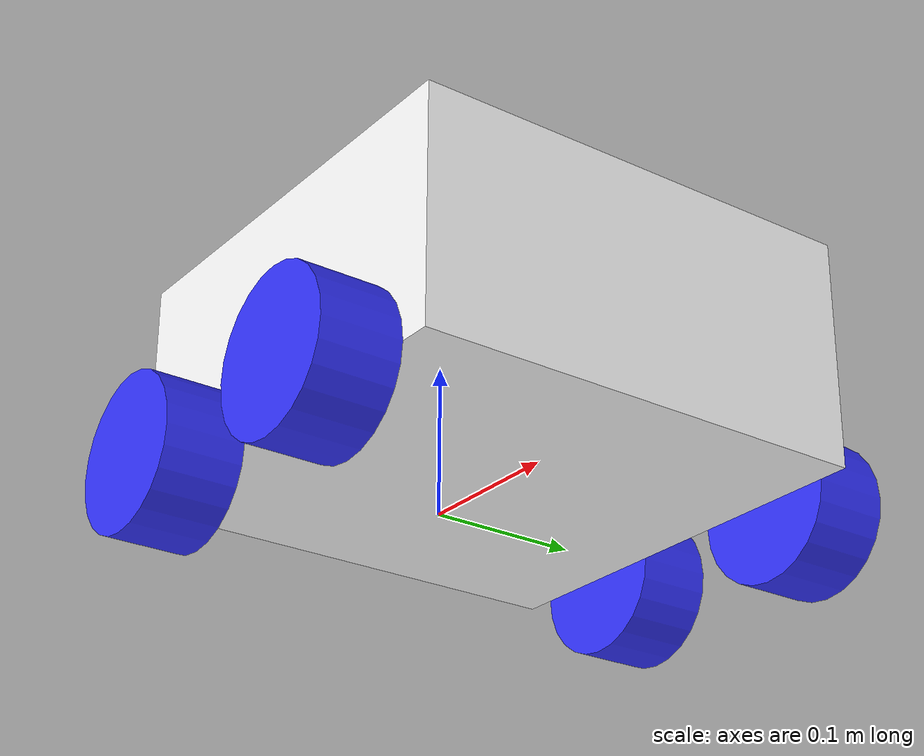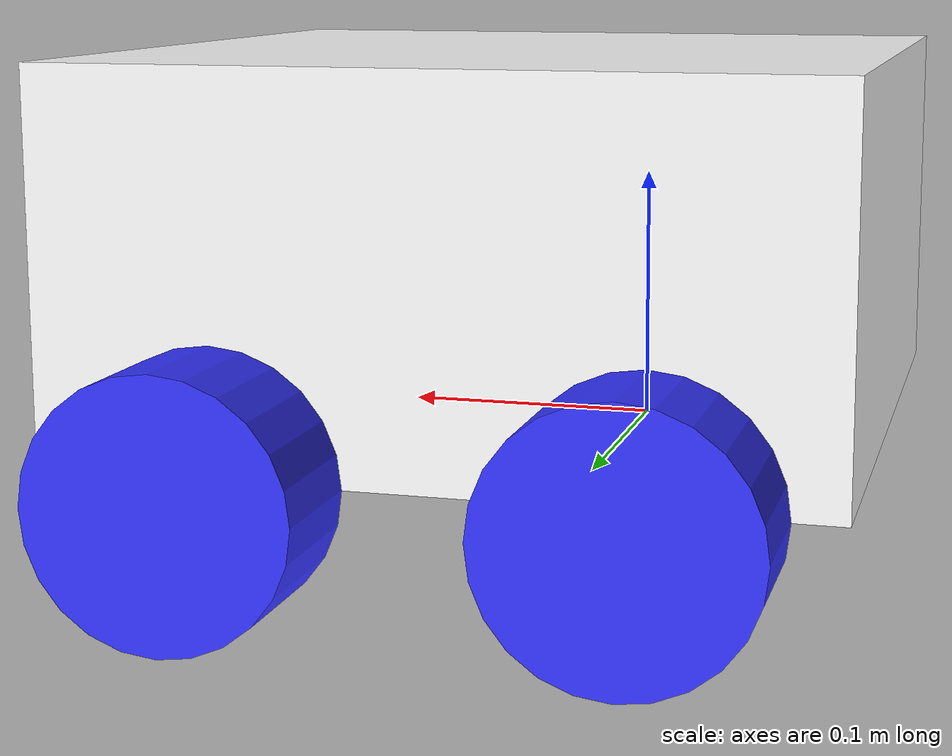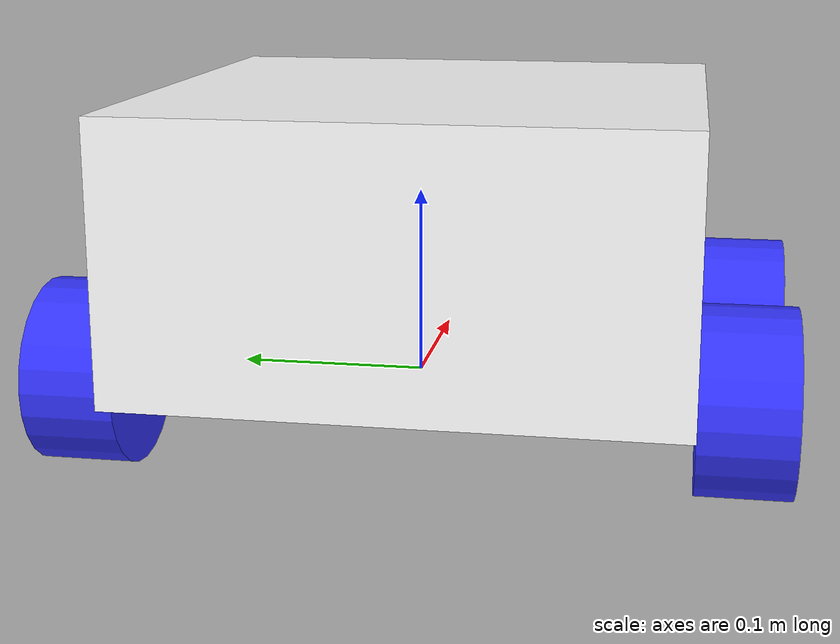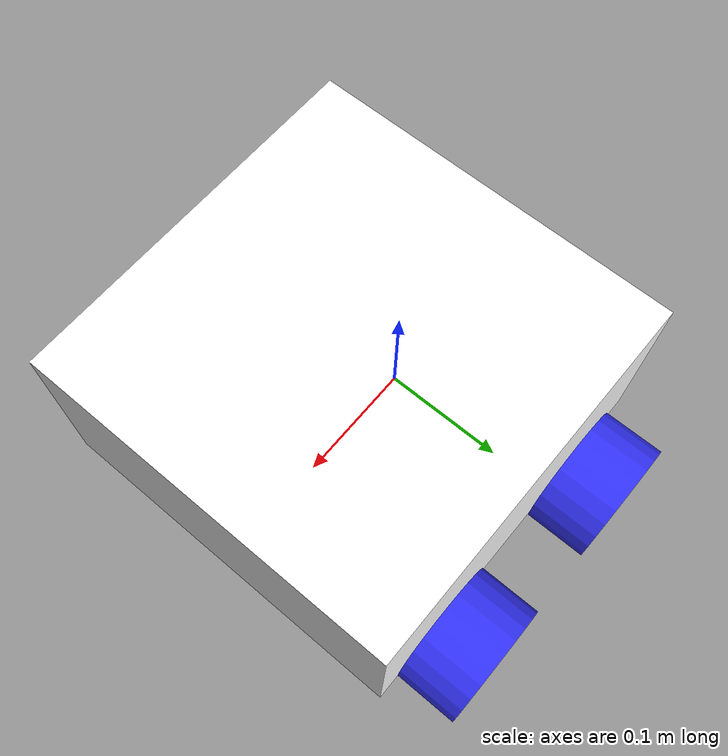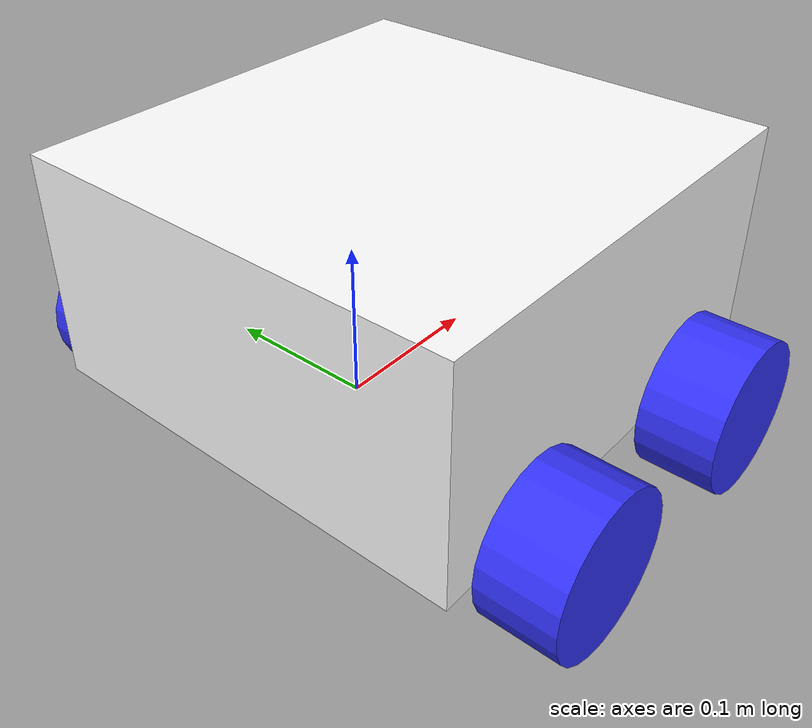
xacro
<?xml version="1.0"?>
<!-- ROBOT CORE COMPONENTS-->

<!-- !!!OUTDATED!!! -->

<!-- call xacro-->
<robot xmlns:xacro="http://www.ros.org/wiki/xacro">

    <!-- Inertial xacro-->
    <xacro:include filename="base_properties.xacro"/>

    <!-- Static Variables -->
    <xacro:property name="left_roll" value="${-pi/2}"/>
    <xacro:property name="right_roll" value="${pi/2}"/>

    <!-- Independent Variables -->
    <xacro:property name="chassis_base" value="0.3"/>
    <xacro:property name="chassis_height" value="0.15"/>
    <xacro:property name="chassis_mass" value="0.36"/>

    <xacro:property name="wheel_radius" value="0.05"/>
    <xacro:property name="wheel_length" value="0.05"/>
    <xacro:property name="wheel_mass" value="0.1"/>

    <!-- Dependent Variables-->
    <xacro:property name="chassis_joint_offset" value="${-chassis_base/3}"/>
    <xacro:property name="chassis_link_offset" value="${chassis_base/2}"/>
    <xacro:property name="chassis_height_offset" value="${chassis_height/2}"/>
    <xacro:property name="frontwheel_offset" value="${(chassis_base * 0.5/5) - (chassis_joint_offset)}"/>
    <xacro:property name="backwheel_offset" value="${-(chassis_base * 0.5/5)}"/>
    <xacro:property name="leftwheel_offset" value="${(chassis_base/2) + (wheel_length/2)}"/>
    <xacro:property name="rightwheel_offset" value="-${(chassis_base/2) + (wheel_length/2)}"/>

    <!-- Materials -->

    <!-- links -->
    <link name="base">
    </link>

    <link name="footprint">
    </link>

    <link name="chassis">
        <visual>
            <origin xyz="${chassis_link_offset} 0 ${chassis_height_offset}"/>
            <geometry>
                <box size="${chassis_base} ${chassis_base} ${chassis_height}"/>
            </geometry>
            <material name="white"/>
        </visual>
        <collision>
            <origin xyz="${chassis_link_offset} 0 ${chassis_height_offset}"/>
            <geometry>
                <box size="${chassis_base} ${chassis_base} ${chassis_height}"/>
            </geometry>
        </collision>
        <xacro:inertial_box mass="${chassis_mass}" x="${chassis_base}" y="${chassis_base}" z="${chassis_height}">
            <origin xyz="${chassis_link_offset} 0 ${chassis_height_offset}" rpy="0 0 0"/>
        </xacro:inertial_box>
    </link>

    <link name="left_back_wheel">
        <visual>
            <geometry>
                <cylinder radius="${wheel_radius}" length="${wheel_length}"/>
            </geometry>
            <material name="blue"/>
        </visual>
        <collision>
            <geometry>
                <cylinder radius="${wheel_radius}" length="${wheel_length}"/>
            </geometry>
        </collision>
        <xacro:inertial_cylinder mass="${wheel_mass}" length="${wheel_length}" radius="${wheel_radius}">
            <origin xyz="0 0 0" rpy="0 0 0"/>
        </xacro:inertial_cylinder>
    </link>

    <link name="right_back_wheel">
        <visual>
            <geometry>
                <cylinder radius="${wheel_radius}" length="${wheel_length}"/>
            </geometry>
            <material name="blue"/>
        </visual>
        <collision>
            <geometry>
                <cylinder radius="${wheel_radius}" length="${wheel_length}"/>
            </geometry>
        </collision>
        <xacro:inertial_cylinder mass="${wheel_mass}" length="${wheel_length}" radius="${wheel_radius}">
            <origin xyz="0 0 0" rpy="0 0 0"/>
        </xacro:inertial_cylinder>
    </link>

    <link name="left_front_wheel">
        <visual>
            <geometry>
                <cylinder radius="${wheel_radius}" length="${wheel_length}"/>
            </geometry>
            <material name="blue"/>
        </visual>
        <collision>
            <geometry>
                <cylinder radius="${wheel_radius}" length="${wheel_length}"/>
            </geometry>
        </collision>
        <xacro:inertial_cylinder mass="${wheel_mass}" length="${wheel_length}" radius="${wheel_radius}">
            <origin xyz="0 0 0" rpy="0 0 0"/>
        </xacro:inertial_cylinder>
    </link>

    <link name="right_front_wheel">
        <visual>
            <geometry>
                <cylinder radius="${wheel_radius}" length="${wheel_length}"/>
            </geometry>
            <material name="blue"/>
        </visual>
        <collision>
            <geometry>
                <cylinder radius="${wheel_radius}" length="${wheel_length}"/>
            </geometry>
        </collision>
        <xacro:inertial_cylinder mass="${wheel_mass}" length="${wheel_length}" radius="${wheel_radius}">
            <origin xyz="0 0 0" rpy="0 0 0"/>
        </xacro:inertial_cylinder>
    </link>

    <!-- Joints -->
    <joint name="footprint-base" type="fixed">
        <parent link="base"/>
        <child link="footprint"/>
        <origin xyz="0 0 0" rpy="0 0 0"/>
    </joint>

    <joint name="chassis-base" type="fixed">
        <parent link="base"/>
        <child link="chassis"/>
        <origin xyz="${chassis_joint_offset} 0 0"/>
    </joint>

    <joint name="left_back_wheel-base" type="continuous">
        <parent link="base"/>
        <child link="left_back_wheel"/>
        <origin xyz="${backwheel_offset} ${leftwheel_offset} 0" rpy="${left_roll} 0 0"/>
        <axis xyz="0 0 1"/>
    </joint>

    <joint name="right_back_wheel-base" type="continuous">
        <parent link="base"/>
        <child link="right_back_wheel"/>
        <origin xyz="${backwheel_offset} ${rightwheel_offset} 0" rpy="${right_roll} 0 0"/>
        <axis xyz="0 0 -1"/>
    </joint>

    <joint name="left_front_wheel-base" type="continuous">
        <parent link="base"/>
        <child link="left_front_wheel"/>
        <origin xyz="${frontwheel_offset} ${leftwheel_offset} 0" rpy="${left_roll} 0 0"/>
        <axis xyz="0 0 1"/>
    </joint>

    <joint name="right_front_wheel-base" type="continuous">
        <parent link="base"/>
        <child link="right_front_wheel"/>
        <origin xyz="${frontwheel_offset} ${rightwheel_offset} 0" rpy="${right_roll} 0 0"/>
        <axis xyz="0 0 -1"/>
    </joint>

    <!-- Gazebo References-->
    <gazebo reference="chassis">
        <material>Gazebo/White</material>
    </gazebo>

    <gazebo reference="left_back_wheel">
        <material>Gazebo/Blue</material>
     </gazebo>

     <gazebo reference="right_back_wheel">
        <material>Gazebo/Blue</material>
     </gazebo>

</robot>

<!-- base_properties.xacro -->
<!--
ROBOT PROPERTIES

Lengths are in meters, Mass are in kilograms, Angles are in radians, Values are type double.
-->
<robot xmlns:xacro="http://www.ros.org/wiki/xacro" >

    <!-- Constants -->
    <xacro:property name="right_roll" value="${-pi/2}"/>
    <xacro:property name="left_roll" value="${pi/2}"/>
    <xacro:property name="smol_offset" value="0.01"/>
    <xacro:property name="kgmm2_to_kgm2" value="1e-6" />
    <xacro:property name="some_value" value="0" />

    <!-- Variables -->
    <xacro:property name="scale_val" value="1.0"/>
    <xacro:property name="scale" value="${scale_val} ${scale_val} ${scale_val}"/>

    <xacro:property name="bot_pos_x" value="0.0"/>
    <xacro:property name="bot_pos_y" value="0.0"/>
    <xacro:property name="bot_pos_z" value="${actual_wheel_radius/2 + 0.0}"/>

    <xacro:property name="actual_bot_width" value="0.4572"/>
    <xacro:property name="actual_bot_length" value="0.4572"/>

    <xacro:property name="actual_chassis_height" value="0.2286"/>
    <xacro:property name="chassis_mass" value="50.0"/>

    <xacro:property name="actual_storage_height" value="0.4572"/>
    <xacro:property name="storage_mass" value="150.0"/>

    <xacro:property name="actual_top_height" value="0.1524"/>
    <xacro:property name="top_mass" value="10.0"/>

    <xacro:property name="actual_wheel_radius" value="${(0.2032)/2}"/>
    <xacro:property name="actual_wheel_thickness" value="0.0762"/>
    <xacro:property name="actual_shaft_length" value="0.127"/>
    <xacro:property name="actual_shaft_thickness" value="0.0232"/>
    <xacro:property name="wheel_mass" value="2.0"/>

    <!-- Macros-->
    <xacro:macro name="scaled_origin" params="x y z">
        <origin xyz="   ${(x * scale_val)}
                        ${(y * scale_val)}
                        ${(z * scale_val)}" />
    </xacro:macro>

    <xacro:macro name="scaled_origin_rpy" params="x y z roll pitch yaw">
        <origin xyz="   ${(x * scale_val)}
                        ${(y * scale_val)}
                        ${(z * scale_val)}"

                rpy="${roll} ${pitch} ${yaw}"/>
    </xacro:macro>

    <!-- Materials -->
    <material name="white">
        <color rgba="1 1 1 1" />
    </material>

    <material name="orange">
        <color rgba="1 0.3 1 1" />
    </material>

    <material name="blue">
        <color rgba="0.2 0.2 1 1"/>
    </material>

    <material name="black">
        <color rgba="0 0 0 1"/>
    </material>

    <material name="red">
        <color rgba="1 0 0 1"/>
    </material>

    <!-- Inertials -->
    <!-- Specify some standard inertial calculations https://en.wikipedia.org/wiki/List_of_moments_of_inertia -->
    <xacro:macro name="inertial_sphere" params="mass radius *origin">
        <inertial>
            <xacro:insert_block name="origin"/>
            <mass value="${mass}" />
            <inertia ixx="${(2/5) * mass * (radius*radius)}" ixy="${mass*some_value}" ixz="${mass*some_value}"
                    iyy="${(2/5) * mass * (radius*radius)}" iyz="${mass*some_value}"
                    izz="${(2/5) * mass * (radius*radius)}" />
        </inertial>
    </xacro:macro>

    <xacro:macro name="inertial_box" params="mass x y z *origin">
        <inertial>
            <xacro:insert_block name="origin"/>
            <mass value="${mass}" />
            <inertia    ixx="${(1/12) * mass * (x*x+z*z)*scale_val}" ixy="${0* some_value}" ixz="${0*some_value}"
                        iyy="${(1/12) * mass * (y*y+z*z)*scale_val}" iyz="${0*some_value}"
                        izz="${(1/12) * mass * (y*y+x*x)*scale_val}" />
        </inertial>
    </xacro:macro>

    <xacro:macro name="inertial_cylinder" params="mass length radius *scaled_origin_rpy">
        <inertial>
            <xacro:insert_block name="scaled_origin_rpy"/>
            <mass value="${mass}" />
            <inertia ixx="${(1/12) * mass * (3*radius*radius + length*length) * scale_val}" ixy="${mass*some_value}" ixz="${mass*some_value}"
                    iyy="${(1/12) * mass * (3*radius*radius + length*length) * scale_val}" iyz="${mass*some_value}"
                    izz="${(1/2) * mass * (radius*radius) * scale_val}" />
        </inertial>

    </xacro:macro>

</robot>
